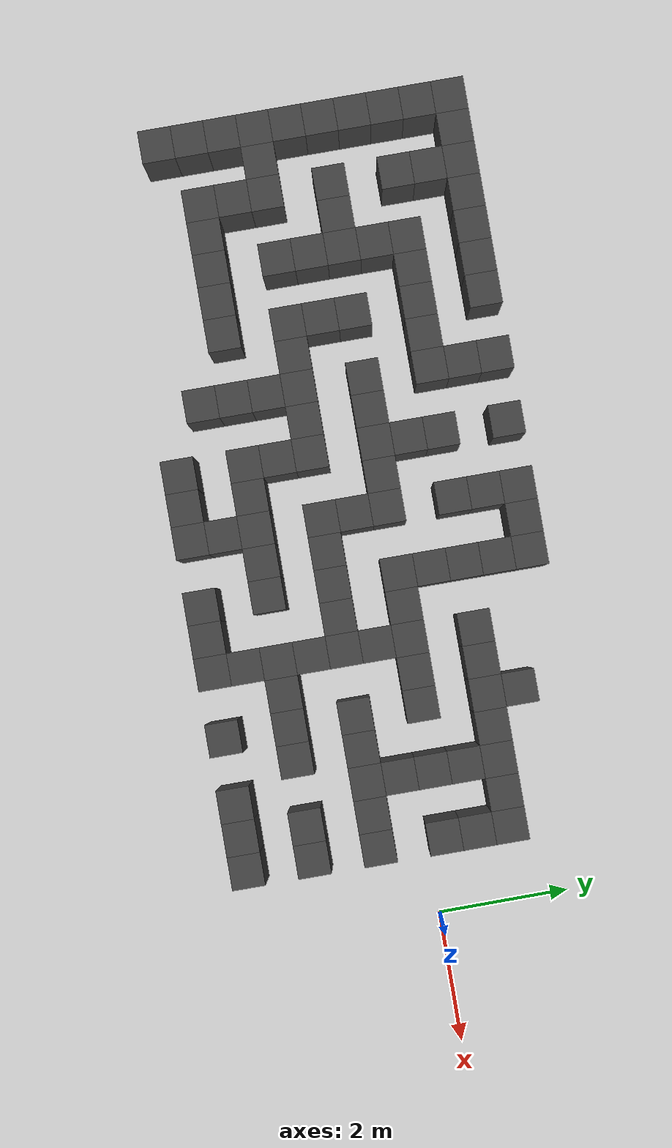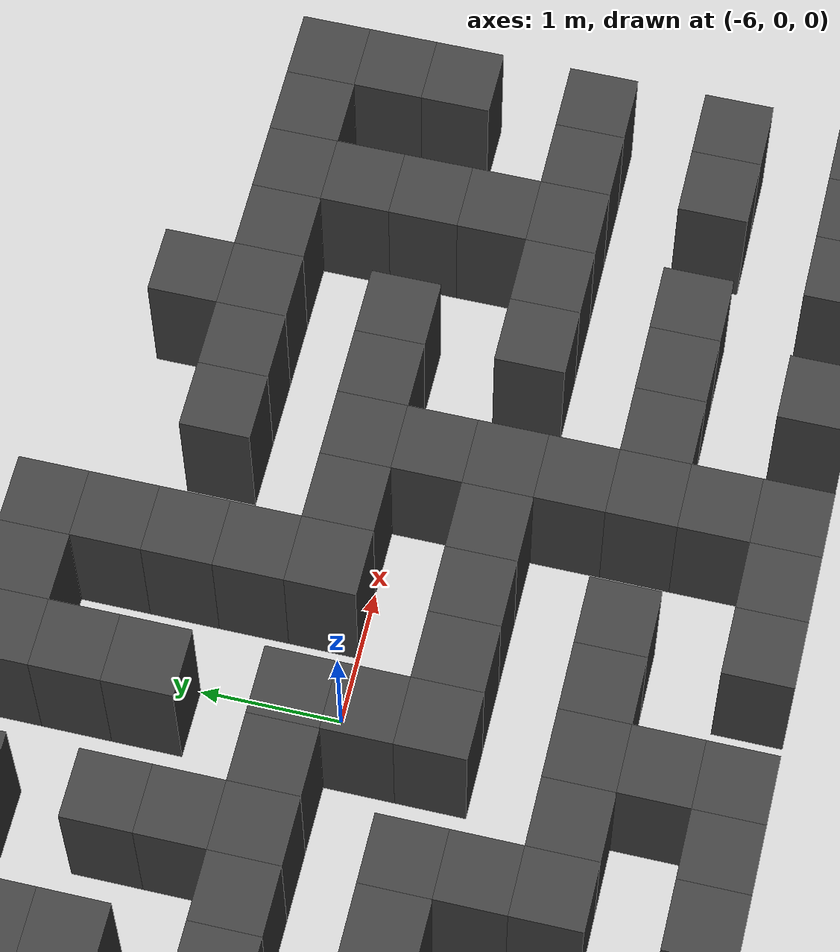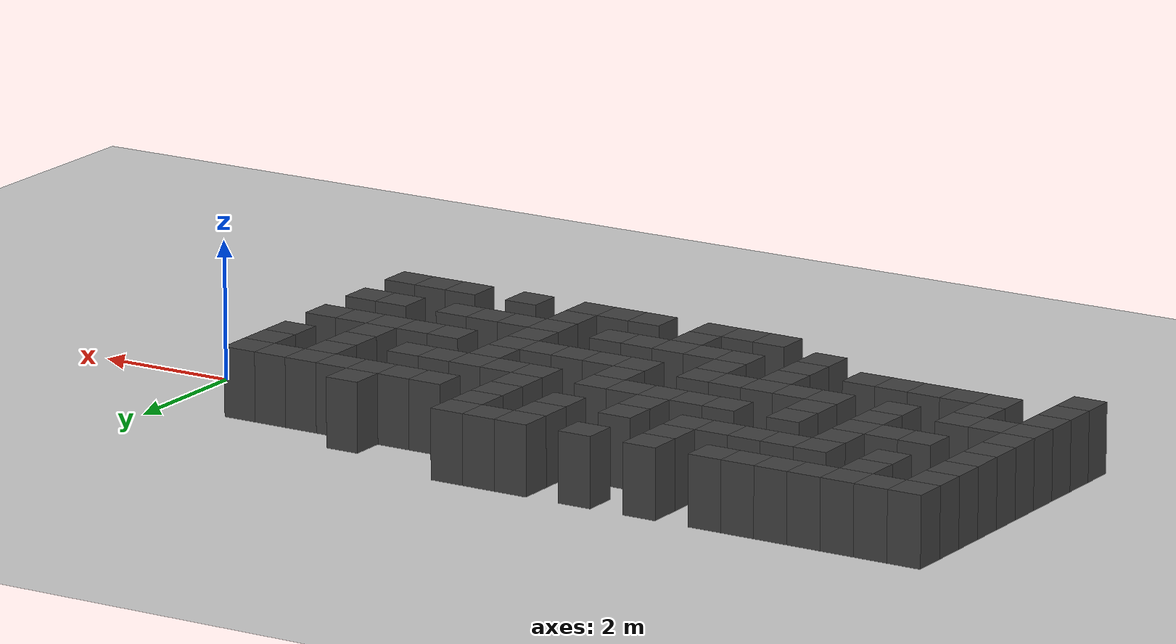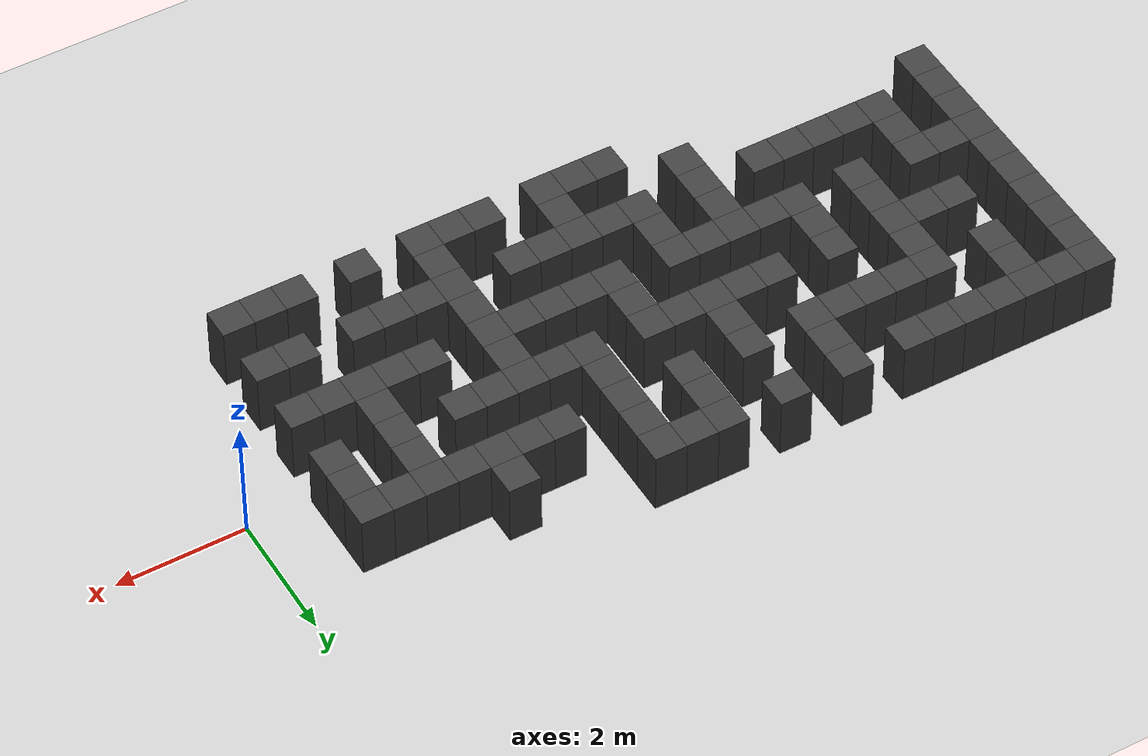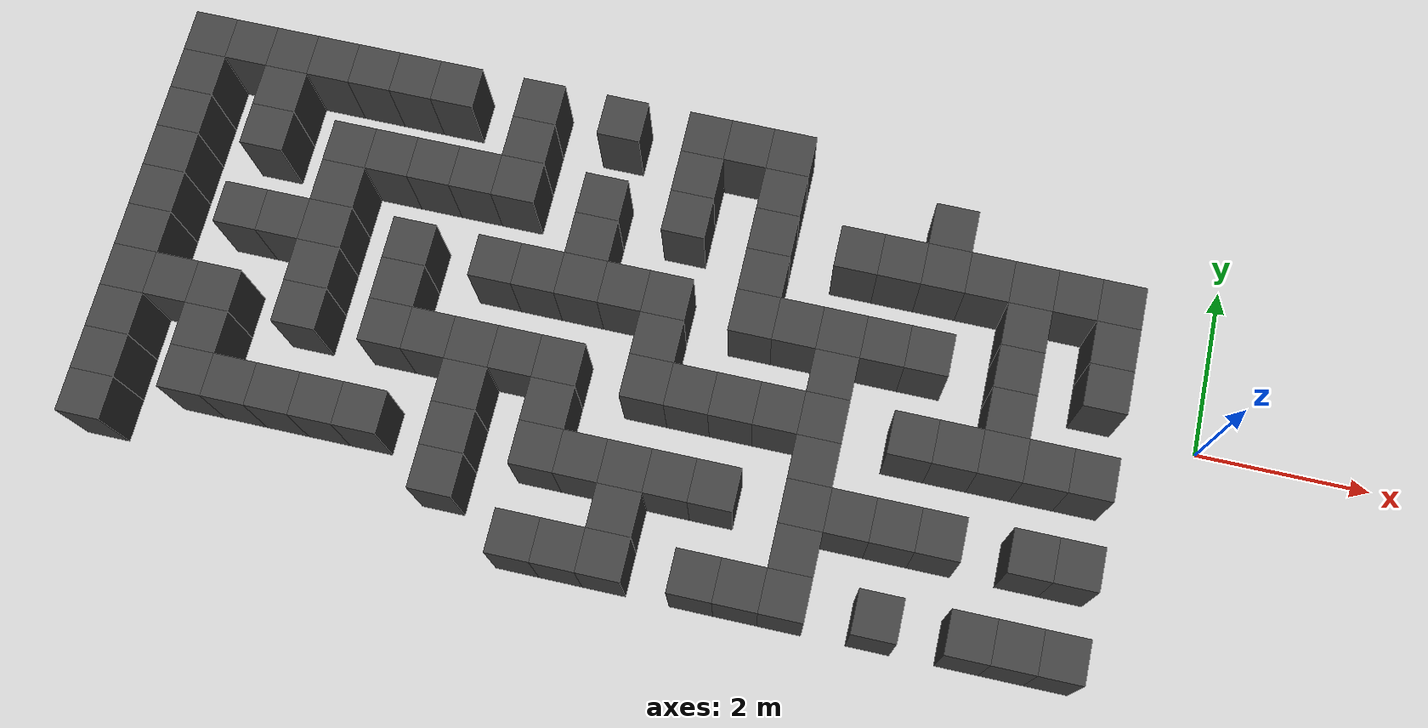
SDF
<sdf version="1.7">
 <world name="map_19217">
  <model name="ground_plane">
   <static>true</static>
   <link name="link">
    <collision name="collision">
     <geometry><plane><normal>0 0 1</normal><size>200 200</size></plane></geometry>
    </collision>
    <visual name="visual">
     <geometry><plane><normal>0 0 1</normal><size>200 200</size></plane></geometry>
     <material><ambient>0.8 0.8 0.8 1</ambient><diffuse>0.8 0.8 0.8 1</diffuse></material>
    </visual>
   </link>
  </model>
  <model name="maze_environment">
   <static>true</static>
   <link name="wall_513">
    <pose>-12.250 2.250 0.500 0 0 0</pose>
    <collision name="col"><geometry><box><size>0.5 0.5 1.0</size></box></geometry></collision>
    <visual name="vis">
     <geometry><box><size>0.5 0.5 1.0</size></box></geometry>
     <material><ambient>0.15 0.15 0.15 1</ambient><diffuse>0.25 0.25 0.25 1</diffuse></material>
    </visual>
   </link>
   <link name="wall_514">
    <pose>-11.750 2.250 0.500 0 0 0</pose>
    <collision name="col"><geometry><box><size>0.5 0.5 1.0</size></box></geometry></collision>
    <visual name="vis">
     <geometry><box><size>0.5 0.5 1.0</size></box></geometry>
     <material><ambient>0.15 0.15 0.15 1</ambient><diffuse>0.25 0.25 0.25 1</diffuse></material>
    </visual>
   </link>
   <link name="wall_515">
    <pose>-11.250 2.250 0.500 0 0 0</pose>
    <collision name="col"><geometry><box><size>0.5 0.5 1.0</size></box></geometry></collision>
    <visual name="vis">
     <geometry><box><size>0.5 0.5 1.0</size></box></geometry>
     <material><ambient>0.15 0.15 0.15 1</ambient><diffuse>0.25 0.25 0.25 1</diffuse></material>
    </visual>
   </link>
   <link name="wall_516">
    <pose>-10.750 2.250 0.500 0 0 0</pose>
    <collision name="col"><geometry><box><size>0.5 0.5 1.0</size></box></geometry></collision>
    <visual name="vis">
     <geometry><box><size>0.5 0.5 1.0</size></box></geometry>
     <material><ambient>0.15 0.15 0.15 1</ambient><diffuse>0.25 0.25 0.25 1</diffuse></material>
    </visual>
   </link>
   <link name="wall_517">
    <pose>-10.250 2.250 0.500 0 0 0</pose>
    <collision name="col"><geometry><box><size>0.5 0.5 1.0</size></box></geometry></collision>
    <visual name="vis">
     <geometry><box><size>0.5 0.5 1.0</size></box></geometry>
     <material><ambient>0.15 0.15 0.15 1</ambient><diffuse>0.25 0.25 0.25 1</diffuse></material>
    </visual>
   </link>
   <link name="wall_518">
    <pose>-9.750 2.250 0.500 0 0 0</pose>
    <collision name="col"><geometry><box><size>0.5 0.5 1.0</size></box></geometry></collision>
    <visual name="vis">
     <geometry><box><size>0.5 0.5 1.0</size></box></geometry>
     <material><ambient>0.15 0.15 0.15 1</ambient><diffuse>0.25 0.25 0.25 1</diffuse></material>
    </visual>
   </link>
   <link name="wall_519">
    <pose>-9.250 2.250 0.500 0 0 0</pose>
    <collision name="col"><geometry><box><size>0.5 0.5 1.0</size></box></geometry></collision>
    <visual name="vis">
     <geometry><box><size>0.5 0.5 1.0</size></box></geometry>
     <material><ambient>0.15 0.15 0.15 1</ambient><diffuse>0.25 0.25 0.25 1</diffuse></material>
    </visual>
   </link>
   <link name="wall_520">
    <pose>-8.250 2.250 0.500 0 0 0</pose>
    <collision name="col"><geometry><box><size>0.5 0.5 1.0</size></box></geometry></collision>
    <visual name="vis">
     <geometry><box><size>0.5 0.5 1.0</size></box></geometry>
     <material><ambient>0.15 0.15 0.15 1</ambient><diffuse>0.25 0.25 0.25 1</diffuse></material>
    </visual>
   </link>
   <link name="wall_521">
    <pose>-7.250 2.250 0.500 0 0 0</pose>
    <collision name="col"><geometry><box><size>0.5 0.5 1.0</size></box></geometry></collision>
    <visual name="vis">
     <geometry><box><size>0.5 0.5 1.0</size></box></geometry>
     <material><ambient>0.15 0.15 0.15 1</ambient><diffuse>0.25 0.25 0.25 1</diffuse></material>
    </visual>
   </link>
   <link name="wall_522">
    <pose>-6.250 2.250 0.500 0 0 0</pose>
    <collision name="col"><geometry><box><size>0.5 0.5 1.0</size></box></geometry></collision>
    <visual name="vis">
     <geometry><box><size>0.5 0.5 1.0</size></box></geometry>
     <material><ambient>0.15 0.15 0.15 1</ambient><diffuse>0.25 0.25 0.25 1</diffuse></material>
    </visual>
   </link>
   <link name="wall_523">
    <pose>-5.750 2.250 0.500 0 0 0</pose>
    <collision name="col"><geometry><box><size>0.5 0.5 1.0</size></box></geometry></collision>
    <visual name="vis">
     <geometry><box><size>0.5 0.5 1.0</size></box></geometry>
     <material><ambient>0.15 0.15 0.15 1</ambient><diffuse>0.25 0.25 0.25 1</diffuse></material>
    </visual>
   </link>
   <link name="wall_524">
    <pose>-5.250 2.250 0.500 0 0 0</pose>
    <collision name="col"><geometry><box><size>0.5 0.5 1.0</size></box></geometry></collision>
    <visual name="vis">
     <geometry><box><size>0.5 0.5 1.0</size></box></geometry>
     <material><ambient>0.15 0.15 0.15 1</ambient><diffuse>0.25 0.25 0.25 1</diffuse></material>
    </visual>
   </link>
   <link name="wall_551">
    <pose>-12.250 1.750 0.500 0 0 0</pose>
    <collision name="col"><geometry><box><size>0.5 0.5 1.0</size></box></geometry></collision>
    <visual name="vis">
     <geometry><box><size>0.5 0.5 1.0</size></box></geometry>
     <material><ambient>0.15 0.15 0.15 1</ambient><diffuse>0.25 0.25 0.25 1</diffuse></material>
    </visual>
   </link>
   <link name="wall_552">
    <pose>-11.250 1.750 0.500 0 0 0</pose>
    <collision name="col"><geometry><box><size>0.5 0.5 1.0</size></box></geometry></collision>
    <visual name="vis">
     <geometry><box><size>0.5 0.5 1.0</size></box></geometry>
     <material><ambient>0.15 0.15 0.15 1</ambient><diffuse>0.25 0.25 0.25 1</diffuse></material>
    </visual>
   </link>
   <link name="wall_553">
    <pose>-8.250 1.750 0.500 0 0 0</pose>
    <collision name="col"><geometry><box><size>0.5 0.5 1.0</size></box></geometry></collision>
    <visual name="vis">
     <geometry><box><size>0.5 0.5 1.0</size></box></geometry>
     <material><ambient>0.15 0.15 0.15 1</ambient><diffuse>0.25 0.25 0.25 1</diffuse></material>
    </visual>
   </link>
   <link name="wall_554">
    <pose>-6.250 1.750 0.500 0 0 0</pose>
    <collision name="col"><geometry><box><size>0.5 0.5 1.0</size></box></geometry></collision>
    <visual name="vis">
     <geometry><box><size>0.5 0.5 1.0</size></box></geometry>
     <material><ambient>0.15 0.15 0.15 1</ambient><diffuse>0.25 0.25 0.25 1</diffuse></material>
    </visual>
   </link>
   <link name="wall_555">
    <pose>-5.250 1.750 0.500 0 0 0</pose>
    <collision name="col"><geometry><box><size>0.5 0.5 1.0</size></box></geometry></collision>
    <visual name="vis">
     <geometry><box><size>0.5 0.5 1.0</size></box></geometry>
     <material><ambient>0.15 0.15 0.15 1</ambient><diffuse>0.25 0.25 0.25 1</diffuse></material>
    </visual>
   </link>
   <link name="wall_556">
    <pose>-3.250 1.750 0.500 0 0 0</pose>
    <collision name="col"><geometry><box><size>0.5 0.5 1.0</size></box></geometry></collision>
    <visual name="vis">
     <geometry><box><size>0.5 0.5 1.0</size></box></geometry>
     <material><ambient>0.15 0.15 0.15 1</ambient><diffuse>0.25 0.25 0.25 1</diffuse></material>
    </visual>
   </link>
   <link name="wall_566">
    <pose>-12.250 1.250 0.500 0 0 0</pose>
    <collision name="col"><geometry><box><size>0.5 0.5 1.0</size></box></geometry></collision>
    <visual name="vis">
     <geometry><box><size>0.5 0.5 1.0</size></box></geometry>
     <material><ambient>0.15 0.15 0.15 1</ambient><diffuse>0.25 0.25 0.25 1</diffuse></material>
    </visual>
   </link>
   <link name="wall_567">
    <pose>-11.250 1.250 0.500 0 0 0</pose>
    <collision name="col"><geometry><box><size>0.5 0.5 1.0</size></box></geometry></collision>
    <visual name="vis">
     <geometry><box><size>0.5 0.5 1.0</size></box></geometry>
     <material><ambient>0.15 0.15 0.15 1</ambient><diffuse>0.25 0.25 0.25 1</diffuse></material>
    </visual>
   </link>
   <link name="wall_568">
    <pose>-10.250 1.250 0.500 0 0 0</pose>
    <collision name="col"><geometry><box><size>0.5 0.5 1.0</size></box></geometry></collision>
    <visual name="vis">
     <geometry><box><size>0.5 0.5 1.0</size></box></geometry>
     <material><ambient>0.15 0.15 0.15 1</ambient><diffuse>0.25 0.25 0.25 1</diffuse></material>
    </visual>
   </link>
   <link name="wall_569">
    <pose>-9.750 1.250 0.500 0 0 0</pose>
    <collision name="col"><geometry><box><size>0.5 0.5 1.0</size></box></geometry></collision>
    <visual name="vis">
     <geometry><box><size>0.5 0.5 1.0</size></box></geometry>
     <material><ambient>0.15 0.15 0.15 1</ambient><diffuse>0.25 0.25 0.25 1</diffuse></material>
    </visual>
   </link>
   <link name="wall_570">
    <pose>-9.250 1.250 0.500 0 0 0</pose>
    <collision name="col"><geometry><box><size>0.5 0.5 1.0</size></box></geometry></collision>
    <visual name="vis">
     <geometry><box><size>0.5 0.5 1.0</size></box></geometry>
     <material><ambient>0.15 0.15 0.15 1</ambient><diffuse>0.25 0.25 0.25 1</diffuse></material>
    </visual>
   </link>
   <link name="wall_571">
    <pose>-8.750 1.250 0.500 0 0 0</pose>
    <collision name="col"><geometry><box><size>0.5 0.5 1.0</size></box></geometry></collision>
    <visual name="vis">
     <geometry><box><size>0.5 0.5 1.0</size></box></geometry>
     <material><ambient>0.15 0.15 0.15 1</ambient><diffuse>0.25 0.25 0.25 1</diffuse></material>
    </visual>
   </link>
   <link name="wall_572">
    <pose>-8.250 1.250 0.500 0 0 0</pose>
    <collision name="col"><geometry><box><size>0.5 0.5 1.0</size></box></geometry></collision>
    <visual name="vis">
     <geometry><box><size>0.5 0.5 1.0</size></box></geometry>
     <material><ambient>0.15 0.15 0.15 1</ambient><diffuse>0.25 0.25 0.25 1</diffuse></material>
    </visual>
   </link>
   <link name="wall_573">
    <pose>-7.250 1.250 0.500 0 0 0</pose>
    <collision name="col"><geometry><box><size>0.5 0.5 1.0</size></box></geometry></collision>
    <visual name="vis">
     <geometry><box><size>0.5 0.5 1.0</size></box></geometry>
     <material><ambient>0.15 0.15 0.15 1</ambient><diffuse>0.25 0.25 0.25 1</diffuse></material>
    </visual>
   </link>
   <link name="wall_574">
    <pose>-6.250 1.250 0.500 0 0 0</pose>
    <collision name="col"><geometry><box><size>0.5 0.5 1.0</size></box></geometry></collision>
    <visual name="vis">
     <geometry><box><size>0.5 0.5 1.0</size></box></geometry>
     <material><ambient>0.15 0.15 0.15 1</ambient><diffuse>0.25 0.25 0.25 1</diffuse></material>
    </visual>
   </link>
   <link name="wall_575">
    <pose>-5.250 1.250 0.500 0 0 0</pose>
    <collision name="col"><geometry><box><size>0.5 0.5 1.0</size></box></geometry></collision>
    <visual name="vis">
     <geometry><box><size>0.5 0.5 1.0</size></box></geometry>
     <material><ambient>0.15 0.15 0.15 1</ambient><diffuse>0.25 0.25 0.25 1</diffuse></material>
    </visual>
   </link>
   <link name="wall_576">
    <pose>-4.250 1.250 0.500 0 0 0</pose>
    <collision name="col"><geometry><box><size>0.5 0.5 1.0</size></box></geometry></collision>
    <visual name="vis">
     <geometry><box><size>0.5 0.5 1.0</size></box></geometry>
     <material><ambient>0.15 0.15 0.15 1</ambient><diffuse>0.25 0.25 0.25 1</diffuse></material>
    </visual>
   </link>
   <link name="wall_577">
    <pose>-3.750 1.250 0.500 0 0 0</pose>
    <collision name="col"><geometry><box><size>0.5 0.5 1.0</size></box></geometry></collision>
    <visual name="vis">
     <geometry><box><size>0.5 0.5 1.0</size></box></geometry>
     <material><ambient>0.15 0.15 0.15 1</ambient><diffuse>0.25 0.25 0.25 1</diffuse></material>
    </visual>
   </link>
   <link name="wall_578">
    <pose>-3.250 1.250 0.500 0 0 0</pose>
    <collision name="col"><geometry><box><size>0.5 0.5 1.0</size></box></geometry></collision>
    <visual name="vis">
     <geometry><box><size>0.5 0.5 1.0</size></box></geometry>
     <material><ambient>0.15 0.15 0.15 1</ambient><diffuse>0.25 0.25 0.25 1</diffuse></material>
    </visual>
   </link>
   <link name="wall_579">
    <pose>-2.750 1.250 0.500 0 0 0</pose>
    <collision name="col"><geometry><box><size>0.5 0.5 1.0</size></box></geometry></collision>
    <visual name="vis">
     <geometry><box><size>0.5 0.5 1.0</size></box></geometry>
     <material><ambient>0.15 0.15 0.15 1</ambient><diffuse>0.25 0.25 0.25 1</diffuse></material>
    </visual>
   </link>
   <link name="wall_580">
    <pose>-2.250 1.250 0.500 0 0 0</pose>
    <collision name="col"><geometry><box><size>0.5 0.5 1.0</size></box></geometry></collision>
    <visual name="vis">
     <geometry><box><size>0.5 0.5 1.0</size></box></geometry>
     <material><ambient>0.15 0.15 0.15 1</ambient><diffuse>0.25 0.25 0.25 1</diffuse></material>
    </visual>
   </link>
   <link name="wall_581">
    <pose>-1.750 1.250 0.500 0 0 0</pose>
    <collision name="col"><geometry><box><size>0.5 0.5 1.0</size></box></geometry></collision>
    <visual name="vis">
     <geometry><box><size>0.5 0.5 1.0</size></box></geometry>
     <material><ambient>0.15 0.15 0.15 1</ambient><diffuse>0.25 0.25 0.25 1</diffuse></material>
    </visual>
   </link>
   <link name="wall_582">
    <pose>-1.250 1.250 0.500 0 0 0</pose>
    <collision name="col"><geometry><box><size>0.5 0.5 1.0</size></box></geometry></collision>
    <visual name="vis">
     <geometry><box><size>0.5 0.5 1.0</size></box></geometry>
     <material><ambient>0.15 0.15 0.15 1</ambient><diffuse>0.25 0.25 0.25 1</diffuse></material>
    </visual>
   </link>
   <link name="wall_602">
    <pose>-12.250 0.750 0.500 0 0 0</pose>
    <collision name="col"><geometry><box><size>0.5 0.5 1.0</size></box></geometry></collision>
    <visual name="vis">
     <geometry><box><size>0.5 0.5 1.0</size></box></geometry>
     <material><ambient>0.15 0.15 0.15 1</ambient><diffuse>0.25 0.25 0.25 1</diffuse></material>
    </visual>
   </link>
   <link name="wall_603">
    <pose>-10.250 0.750 0.500 0 0 0</pose>
    <collision name="col"><geometry><box><size>0.5 0.5 1.0</size></box></geometry></collision>
    <visual name="vis">
     <geometry><box><size>0.5 0.5 1.0</size></box></geometry>
     <material><ambient>0.15 0.15 0.15 1</ambient><diffuse>0.25 0.25 0.25 1</diffuse></material>
    </visual>
   </link>
   <link name="wall_604">
    <pose>-7.250 0.750 0.500 0 0 0</pose>
    <collision name="col"><geometry><box><size>0.5 0.5 1.0</size></box></geometry></collision>
    <visual name="vis">
     <geometry><box><size>0.5 0.5 1.0</size></box></geometry>
     <material><ambient>0.15 0.15 0.15 1</ambient><diffuse>0.25 0.25 0.25 1</diffuse></material>
    </visual>
   </link>
   <link name="wall_605">
    <pose>-5.250 0.750 0.500 0 0 0</pose>
    <collision name="col"><geometry><box><size>0.5 0.5 1.0</size></box></geometry></collision>
    <visual name="vis">
     <geometry><box><size>0.5 0.5 1.0</size></box></geometry>
     <material><ambient>0.15 0.15 0.15 1</ambient><diffuse>0.25 0.25 0.25 1</diffuse></material>
    </visual>
   </link>
   <link name="wall_606">
    <pose>-2.250 0.750 0.500 0 0 0</pose>
    <collision name="col"><geometry><box><size>0.5 0.5 1.0</size></box></geometry></collision>
    <visual name="vis">
     <geometry><box><size>0.5 0.5 1.0</size></box></geometry>
     <material><ambient>0.15 0.15 0.15 1</ambient><diffuse>0.25 0.25 0.25 1</diffuse></material>
    </visual>
   </link>
   <link name="wall_607">
    <pose>-1.250 0.750 0.500 0 0 0</pose>
    <collision name="col"><geometry><box><size>0.5 0.5 1.0</size></box></geometry></collision>
    <visual name="vis">
     <geometry><box><size>0.5 0.5 1.0</size></box></geometry>
     <material><ambient>0.15 0.15 0.15 1</ambient><diffuse>0.25 0.25 0.25 1</diffuse></material>
    </visual>
   </link>
   <link name="wall_615">
    <pose>-12.250 0.250 0.500 0 0 0</pose>
    <collision name="col"><geometry><box><size>0.5 0.5 1.0</size></box></geometry></collision>
    <visual name="vis">
     <geometry><box><size>0.5 0.5 1.0</size></box></geometry>
     <material><ambient>0.15 0.15 0.15 1</ambient><diffuse>0.25 0.25 0.25 1</diffuse></material>
    </visual>
   </link>
   <link name="wall_616">
    <pose>-11.250 0.250 0.500 0 0 0</pose>
    <collision name="col"><geometry><box><size>0.5 0.5 1.0</size></box></geometry></collision>
    <visual name="vis">
     <geometry><box><size>0.5 0.5 1.0</size></box></geometry>
     <material><ambient>0.15 0.15 0.15 1</ambient><diffuse>0.25 0.25 0.25 1</diffuse></material>
    </visual>
   </link>
   <link name="wall_617">
    <pose>-10.750 0.250 0.500 0 0 0</pose>
    <collision name="col"><geometry><box><size>0.5 0.5 1.0</size></box></geometry></collision>
    <visual name="vis">
     <geometry><box><size>0.5 0.5 1.0</size></box></geometry>
     <material><ambient>0.15 0.15 0.15 1</ambient><diffuse>0.25 0.25 0.25 1</diffuse></material>
    </visual>
   </link>
   <link name="wall_618">
    <pose>-10.250 0.250 0.500 0 0 0</pose>
    <collision name="col"><geometry><box><size>0.5 0.5 1.0</size></box></geometry></collision>
    <visual name="vis">
     <geometry><box><size>0.5 0.5 1.0</size></box></geometry>
     <material><ambient>0.15 0.15 0.15 1</ambient><diffuse>0.25 0.25 0.25 1</diffuse></material>
    </visual>
   </link>
   <link name="wall_619">
    <pose>-9.250 0.250 0.500 0 0 0</pose>
    <collision name="col"><geometry><box><size>0.5 0.5 1.0</size></box></geometry></collision>
    <visual name="vis">
     <geometry><box><size>0.5 0.5 1.0</size></box></geometry>
     <material><ambient>0.15 0.15 0.15 1</ambient><diffuse>0.25 0.25 0.25 1</diffuse></material>
    </visual>
   </link>
   <link name="wall_620">
    <pose>-8.250 0.250 0.500 0 0 0</pose>
    <collision name="col"><geometry><box><size>0.5 0.5 1.0</size></box></geometry></collision>
    <visual name="vis">
     <geometry><box><size>0.5 0.5 1.0</size></box></geometry>
     <material><ambient>0.15 0.15 0.15 1</ambient><diffuse>0.25 0.25 0.25 1</diffuse></material>
    </visual>
   </link>
   <link name="wall_621">
    <pose>-7.750 0.250 0.500 0 0 0</pose>
    <collision name="col"><geometry><box><size>0.5 0.5 1.0</size></box></geometry></collision>
    <visual name="vis">
     <geometry><box><size>0.5 0.5 1.0</size></box></geometry>
     <material><ambient>0.15 0.15 0.15 1</ambient><diffuse>0.25 0.25 0.25 1</diffuse></material>
    </visual>
   </link>
   <link name="wall_622">
    <pose>-7.250 0.250 0.500 0 0 0</pose>
    <collision name="col"><geometry><box><size>0.5 0.5 1.0</size></box></geometry></collision>
    <visual name="vis">
     <geometry><box><size>0.5 0.5 1.0</size></box></geometry>
     <material><ambient>0.15 0.15 0.15 1</ambient><diffuse>0.25 0.25 0.25 1</diffuse></material>
    </visual>
   </link>
   <link name="wall_623">
    <pose>-6.750 0.250 0.500 0 0 0</pose>
    <collision name="col"><geometry><box><size>0.5 0.5 1.0</size></box></geometry></collision>
    <visual name="vis">
     <geometry><box><size>0.5 0.5 1.0</size></box></geometry>
     <material><ambient>0.15 0.15 0.15 1</ambient><diffuse>0.25 0.25 0.25 1</diffuse></material>
    </visual>
   </link>
   <link name="wall_624">
    <pose>-6.250 0.250 0.500 0 0 0</pose>
    <collision name="col"><geometry><box><size>0.5 0.5 1.0</size></box></geometry></collision>
    <visual name="vis">
     <geometry><box><size>0.5 0.5 1.0</size></box></geometry>
     <material><ambient>0.15 0.15 0.15 1</ambient><diffuse>0.25 0.25 0.25 1</diffuse></material>
    </visual>
   </link>
   <link name="wall_625">
    <pose>-5.250 0.250 0.500 0 0 0</pose>
    <collision name="col"><geometry><box><size>0.5 0.5 1.0</size></box></geometry></collision>
    <visual name="vis">
     <geometry><box><size>0.5 0.5 1.0</size></box></geometry>
     <material><ambient>0.15 0.15 0.15 1</ambient><diffuse>0.25 0.25 0.25 1</diffuse></material>
    </visual>
   </link>
   <link name="wall_626">
    <pose>-4.750 0.250 0.500 0 0 0</pose>
    <collision name="col"><geometry><box><size>0.5 0.5 1.0</size></box></geometry></collision>
    <visual name="vis">
     <geometry><box><size>0.5 0.5 1.0</size></box></geometry>
     <material><ambient>0.15 0.15 0.15 1</ambient><diffuse>0.25 0.25 0.25 1</diffuse></material>
    </visual>
   </link>
   <link name="wall_627">
    <pose>-4.250 0.250 0.500 0 0 0</pose>
    <collision name="col"><geometry><box><size>0.5 0.5 1.0</size></box></geometry></collision>
    <visual name="vis">
     <geometry><box><size>0.5 0.5 1.0</size></box></geometry>
     <material><ambient>0.15 0.15 0.15 1</ambient><diffuse>0.25 0.25 0.25 1</diffuse></material>
    </visual>
   </link>
   <link name="wall_628">
    <pose>-3.750 0.250 0.500 0 0 0</pose>
    <collision name="col"><geometry><box><size>0.5 0.5 1.0</size></box></geometry></collision>
    <visual name="vis">
     <geometry><box><size>0.5 0.5 1.0</size></box></geometry>
     <material><ambient>0.15 0.15 0.15 1</ambient><diffuse>0.25 0.25 0.25 1</diffuse></material>
    </visual>
   </link>
   <link name="wall_629">
    <pose>-3.250 0.250 0.500 0 0 0</pose>
    <collision name="col"><geometry><box><size>0.5 0.5 1.0</size></box></geometry></collision>
    <visual name="vis">
     <geometry><box><size>0.5 0.5 1.0</size></box></geometry>
     <material><ambient>0.15 0.15 0.15 1</ambient><diffuse>0.25 0.25 0.25 1</diffuse></material>
    </visual>
   </link>
   <link name="wall_630">
    <pose>-2.250 0.250 0.500 0 0 0</pose>
    <collision name="col"><geometry><box><size>0.5 0.5 1.0</size></box></geometry></collision>
    <visual name="vis">
     <geometry><box><size>0.5 0.5 1.0</size></box></geometry>
     <material><ambient>0.15 0.15 0.15 1</ambient><diffuse>0.25 0.25 0.25 1</diffuse></material>
    </visual>
   </link>
   <link name="wall_631">
    <pose>-1.250 0.250 0.500 0 0 0</pose>
    <collision name="col"><geometry><box><size>0.5 0.5 1.0</size></box></geometry></collision>
    <visual name="vis">
     <geometry><box><size>0.5 0.5 1.0</size></box></geometry>
     <material><ambient>0.15 0.15 0.15 1</ambient><diffuse>0.25 0.25 0.25 1</diffuse></material>
    </visual>
   </link>
   <link name="wall_654">
    <pose>-12.250 -0.250 0.500 0 0 0</pose>
    <collision name="col"><geometry><box><size>0.5 0.5 1.0</size></box></geometry></collision>
    <visual name="vis">
     <geometry><box><size>0.5 0.5 1.0</size></box></geometry>
     <material><ambient>0.15 0.15 0.15 1</ambient><diffuse>0.25 0.25 0.25 1</diffuse></material>
    </visual>
   </link>
   <link name="wall_655">
    <pose>-10.250 -0.250 0.500 0 0 0</pose>
    <collision name="col"><geometry><box><size>0.5 0.5 1.0</size></box></geometry></collision>
    <visual name="vis">
     <geometry><box><size>0.5 0.5 1.0</size></box></geometry>
     <material><ambient>0.15 0.15 0.15 1</ambient><diffuse>0.25 0.25 0.25 1</diffuse></material>
    </visual>
   </link>
   <link name="wall_656">
    <pose>-9.250 -0.250 0.500 0 0 0</pose>
    <collision name="col"><geometry><box><size>0.5 0.5 1.0</size></box></geometry></collision>
    <visual name="vis">
     <geometry><box><size>0.5 0.5 1.0</size></box></geometry>
     <material><ambient>0.15 0.15 0.15 1</ambient><diffuse>0.25 0.25 0.25 1</diffuse></material>
    </visual>
   </link>
   <link name="wall_657">
    <pose>-6.250 -0.250 0.500 0 0 0</pose>
    <collision name="col"><geometry><box><size>0.5 0.5 1.0</size></box></geometry></collision>
    <visual name="vis">
     <geometry><box><size>0.5 0.5 1.0</size></box></geometry>
     <material><ambient>0.15 0.15 0.15 1</ambient><diffuse>0.25 0.25 0.25 1</diffuse></material>
    </visual>
   </link>
   <link name="wall_658">
    <pose>-4.250 -0.250 0.500 0 0 0</pose>
    <collision name="col"><geometry><box><size>0.5 0.5 1.0</size></box></geometry></collision>
    <visual name="vis">
     <geometry><box><size>0.5 0.5 1.0</size></box></geometry>
     <material><ambient>0.15 0.15 0.15 1</ambient><diffuse>0.25 0.25 0.25 1</diffuse></material>
    </visual>
   </link>
   <link name="wall_659">
    <pose>-2.250 -0.250 0.500 0 0 0</pose>
    <collision name="col"><geometry><box><size>0.5 0.5 1.0</size></box></geometry></collision>
    <visual name="vis">
     <geometry><box><size>0.5 0.5 1.0</size></box></geometry>
     <material><ambient>0.15 0.15 0.15 1</ambient><diffuse>0.25 0.25 0.25 1</diffuse></material>
    </visual>
   </link>
   <link name="wall_664">
    <pose>-12.250 -0.750 0.500 0 0 0</pose>
    <collision name="col"><geometry><box><size>0.5 0.5 1.0</size></box></geometry></collision>
    <visual name="vis">
     <geometry><box><size>0.5 0.5 1.0</size></box></geometry>
     <material><ambient>0.15 0.15 0.15 1</ambient><diffuse>0.25 0.25 0.25 1</diffuse></material>
    </visual>
   </link>
   <link name="wall_665">
    <pose>-11.750 -0.750 0.500 0 0 0</pose>
    <collision name="col"><geometry><box><size>0.5 0.5 1.0</size></box></geometry></collision>
    <visual name="vis">
     <geometry><box><size>0.5 0.5 1.0</size></box></geometry>
     <material><ambient>0.15 0.15 0.15 1</ambient><diffuse>0.25 0.25 0.25 1</diffuse></material>
    </visual>
   </link>
   <link name="wall_666">
    <pose>-11.250 -0.750 0.500 0 0 0</pose>
    <collision name="col"><geometry><box><size>0.5 0.5 1.0</size></box></geometry></collision>
    <visual name="vis">
     <geometry><box><size>0.5 0.5 1.0</size></box></geometry>
     <material><ambient>0.15 0.15 0.15 1</ambient><diffuse>0.25 0.25 0.25 1</diffuse></material>
    </visual>
   </link>
   <link name="wall_667">
    <pose>-10.250 -0.750 0.500 0 0 0</pose>
    <collision name="col"><geometry><box><size>0.5 0.5 1.0</size></box></geometry></collision>
    <visual name="vis">
     <geometry><box><size>0.5 0.5 1.0</size></box></geometry>
     <material><ambient>0.15 0.15 0.15 1</ambient><diffuse>0.25 0.25 0.25 1</diffuse></material>
    </visual>
   </link>
   <link name="wall_668">
    <pose>-9.250 -0.750 0.500 0 0 0</pose>
    <collision name="col"><geometry><box><size>0.5 0.5 1.0</size></box></geometry></collision>
    <visual name="vis">
     <geometry><box><size>0.5 0.5 1.0</size></box></geometry>
     <material><ambient>0.15 0.15 0.15 1</ambient><diffuse>0.25 0.25 0.25 1</diffuse></material>
    </visual>
   </link>
   <link name="wall_669">
    <pose>-8.750 -0.750 0.500 0 0 0</pose>
    <collision name="col"><geometry><box><size>0.5 0.5 1.0</size></box></geometry></collision>
    <visual name="vis">
     <geometry><box><size>0.5 0.5 1.0</size></box></geometry>
     <material><ambient>0.15 0.15 0.15 1</ambient><diffuse>0.25 0.25 0.25 1</diffuse></material>
    </visual>
   </link>
   <link name="wall_670">
    <pose>-8.250 -0.750 0.500 0 0 0</pose>
    <collision name="col"><geometry><box><size>0.5 0.5 1.0</size></box></geometry></collision>
    <visual name="vis">
     <geometry><box><size>0.5 0.5 1.0</size></box></geometry>
     <material><ambient>0.15 0.15 0.15 1</ambient><diffuse>0.25 0.25 0.25 1</diffuse></material>
    </visual>
   </link>
   <link name="wall_671">
    <pose>-7.750 -0.750 0.500 0 0 0</pose>
    <collision name="col"><geometry><box><size>0.5 0.5 1.0</size></box></geometry></collision>
    <visual name="vis">
     <geometry><box><size>0.5 0.5 1.0</size></box></geometry>
     <material><ambient>0.15 0.15 0.15 1</ambient><diffuse>0.25 0.25 0.25 1</diffuse></material>
    </visual>
   </link>
   <link name="wall_672">
    <pose>-7.250 -0.750 0.500 0 0 0</pose>
    <collision name="col"><geometry><box><size>0.5 0.5 1.0</size></box></geometry></collision>
    <visual name="vis">
     <geometry><box><size>0.5 0.5 1.0</size></box></geometry>
     <material><ambient>0.15 0.15 0.15 1</ambient><diffuse>0.25 0.25 0.25 1</diffuse></material>
    </visual>
   </link>
   <link name="wall_673">
    <pose>-6.250 -0.750 0.500 0 0 0</pose>
    <collision name="col"><geometry><box><size>0.5 0.5 1.0</size></box></geometry></collision>
    <visual name="vis">
     <geometry><box><size>0.5 0.5 1.0</size></box></geometry>
     <material><ambient>0.15 0.15 0.15 1</ambient><diffuse>0.25 0.25 0.25 1</diffuse></material>
    </visual>
   </link>
   <link name="wall_674">
    <pose>-5.750 -0.750 0.500 0 0 0</pose>
    <collision name="col"><geometry><box><size>0.5 0.5 1.0</size></box></geometry></collision>
    <visual name="vis">
     <geometry><box><size>0.5 0.5 1.0</size></box></geometry>
     <material><ambient>0.15 0.15 0.15 1</ambient><diffuse>0.25 0.25 0.25 1</diffuse></material>
    </visual>
   </link>
   <link name="wall_675">
    <pose>-5.250 -0.750 0.500 0 0 0</pose>
    <collision name="col"><geometry><box><size>0.5 0.5 1.0</size></box></geometry></collision>
    <visual name="vis">
     <geometry><box><size>0.5 0.5 1.0</size></box></geometry>
     <material><ambient>0.15 0.15 0.15 1</ambient><diffuse>0.25 0.25 0.25 1</diffuse></material>
    </visual>
   </link>
   <link name="wall_676">
    <pose>-4.750 -0.750 0.500 0 0 0</pose>
    <collision name="col"><geometry><box><size>0.5 0.5 1.0</size></box></geometry></collision>
    <visual name="vis">
     <geometry><box><size>0.5 0.5 1.0</size></box></geometry>
     <material><ambient>0.15 0.15 0.15 1</ambient><diffuse>0.25 0.25 0.25 1</diffuse></material>
    </visual>
   </link>
   <link name="wall_677">
    <pose>-4.250 -0.750 0.500 0 0 0</pose>
    <collision name="col"><geometry><box><size>0.5 0.5 1.0</size></box></geometry></collision>
    <visual name="vis">
     <geometry><box><size>0.5 0.5 1.0</size></box></geometry>
     <material><ambient>0.15 0.15 0.15 1</ambient><diffuse>0.25 0.25 0.25 1</diffuse></material>
    </visual>
   </link>
   <link name="wall_678">
    <pose>-3.250 -0.750 0.500 0 0 0</pose>
    <collision name="col"><geometry><box><size>0.5 0.5 1.0</size></box></geometry></collision>
    <visual name="vis">
     <geometry><box><size>0.5 0.5 1.0</size></box></geometry>
     <material><ambient>0.15 0.15 0.15 1</ambient><diffuse>0.25 0.25 0.25 1</diffuse></material>
    </visual>
   </link>
   <link name="wall_679">
    <pose>-2.750 -0.750 0.500 0 0 0</pose>
    <collision name="col"><geometry><box><size>0.5 0.5 1.0</size></box></geometry></collision>
    <visual name="vis">
     <geometry><box><size>0.5 0.5 1.0</size></box></geometry>
     <material><ambient>0.15 0.15 0.15 1</ambient><diffuse>0.25 0.25 0.25 1</diffuse></material>
    </visual>
   </link>
   <link name="wall_680">
    <pose>-2.250 -0.750 0.500 0 0 0</pose>
    <collision name="col"><geometry><box><size>0.5 0.5 1.0</size></box></geometry></collision>
    <visual name="vis">
     <geometry><box><size>0.5 0.5 1.0</size></box></geometry>
     <material><ambient>0.15 0.15 0.15 1</ambient><diffuse>0.25 0.25 0.25 1</diffuse></material>
    </visual>
   </link>
   <link name="wall_681">
    <pose>-1.750 -0.750 0.500 0 0 0</pose>
    <collision name="col"><geometry><box><size>0.5 0.5 1.0</size></box></geometry></collision>
    <visual name="vis">
     <geometry><box><size>0.5 0.5 1.0</size></box></geometry>
     <material><ambient>0.15 0.15 0.15 1</ambient><diffuse>0.25 0.25 0.25 1</diffuse></material>
    </visual>
   </link>
   <link name="wall_682">
    <pose>-1.250 -0.750 0.500 0 0 0</pose>
    <collision name="col"><geometry><box><size>0.5 0.5 1.0</size></box></geometry></collision>
    <visual name="vis">
     <geometry><box><size>0.5 0.5 1.0</size></box></geometry>
     <material><ambient>0.15 0.15 0.15 1</ambient><diffuse>0.25 0.25 0.25 1</diffuse></material>
    </visual>
   </link>
   <link name="wall_708">
    <pose>-12.250 -1.250 0.500 0 0 0</pose>
    <collision name="col"><geometry><box><size>0.5 0.5 1.0</size></box></geometry></collision>
    <visual name="vis">
     <geometry><box><size>0.5 0.5 1.0</size></box></geometry>
     <material><ambient>0.15 0.15 0.15 1</ambient><diffuse>0.25 0.25 0.25 1</diffuse></material>
    </visual>
   </link>
   <link name="wall_709">
    <pose>-11.250 -1.250 0.500 0 0 0</pose>
    <collision name="col"><geometry><box><size>0.5 0.5 1.0</size></box></geometry></collision>
    <visual name="vis">
     <geometry><box><size>0.5 0.5 1.0</size></box></geometry>
     <material><ambient>0.15 0.15 0.15 1</ambient><diffuse>0.25 0.25 0.25 1</diffuse></material>
    </visual>
   </link>
   <link name="wall_710">
    <pose>-8.250 -1.250 0.500 0 0 0</pose>
    <collision name="col"><geometry><box><size>0.5 0.5 1.0</size></box></geometry></collision>
    <visual name="vis">
     <geometry><box><size>0.5 0.5 1.0</size></box></geometry>
     <material><ambient>0.15 0.15 0.15 1</ambient><diffuse>0.25 0.25 0.25 1</diffuse></material>
    </visual>
   </link>
   <link name="wall_711">
    <pose>-7.250 -1.250 0.500 0 0 0</pose>
    <collision name="col"><geometry><box><size>0.5 0.5 1.0</size></box></geometry></collision>
    <visual name="vis">
     <geometry><box><size>0.5 0.5 1.0</size></box></geometry>
     <material><ambient>0.15 0.15 0.15 1</ambient><diffuse>0.25 0.25 0.25 1</diffuse></material>
    </visual>
   </link>
   <link name="wall_712">
    <pose>-4.250 -1.250 0.500 0 0 0</pose>
    <collision name="col"><geometry><box><size>0.5 0.5 1.0</size></box></geometry></collision>
    <visual name="vis">
     <geometry><box><size>0.5 0.5 1.0</size></box></geometry>
     <material><ambient>0.15 0.15 0.15 1</ambient><diffuse>0.25 0.25 0.25 1</diffuse></material>
    </visual>
   </link>
   <link name="wall_718">
    <pose>-12.250 -1.750 0.500 0 0 0</pose>
    <collision name="col"><geometry><box><size>0.5 0.5 1.0</size></box></geometry></collision>
    <visual name="vis">
     <geometry><box><size>0.5 0.5 1.0</size></box></geometry>
     <material><ambient>0.15 0.15 0.15 1</ambient><diffuse>0.25 0.25 0.25 1</diffuse></material>
    </visual>
   </link>
   <link name="wall_719">
    <pose>-11.250 -1.750 0.500 0 0 0</pose>
    <collision name="col"><geometry><box><size>0.5 0.5 1.0</size></box></geometry></collision>
    <visual name="vis">
     <geometry><box><size>0.5 0.5 1.0</size></box></geometry>
     <material><ambient>0.15 0.15 0.15 1</ambient><diffuse>0.25 0.25 0.25 1</diffuse></material>
    </visual>
   </link>
   <link name="wall_720">
    <pose>-10.750 -1.750 0.500 0 0 0</pose>
    <collision name="col"><geometry><box><size>0.5 0.5 1.0</size></box></geometry></collision>
    <visual name="vis">
     <geometry><box><size>0.5 0.5 1.0</size></box></geometry>
     <material><ambient>0.15 0.15 0.15 1</ambient><diffuse>0.25 0.25 0.25 1</diffuse></material>
    </visual>
   </link>
   <link name="wall_721">
    <pose>-10.250 -1.750 0.500 0 0 0</pose>
    <collision name="col"><geometry><box><size>0.5 0.5 1.0</size></box></geometry></collision>
    <visual name="vis">
     <geometry><box><size>0.5 0.5 1.0</size></box></geometry>
     <material><ambient>0.15 0.15 0.15 1</ambient><diffuse>0.25 0.25 0.25 1</diffuse></material>
    </visual>
   </link>
   <link name="wall_722">
    <pose>-9.750 -1.750 0.500 0 0 0</pose>
    <collision name="col"><geometry><box><size>0.5 0.5 1.0</size></box></geometry></collision>
    <visual name="vis">
     <geometry><box><size>0.5 0.5 1.0</size></box></geometry>
     <material><ambient>0.15 0.15 0.15 1</ambient><diffuse>0.25 0.25 0.25 1</diffuse></material>
    </visual>
   </link>
   <link name="wall_723">
    <pose>-9.250 -1.750 0.500 0 0 0</pose>
    <collision name="col"><geometry><box><size>0.5 0.5 1.0</size></box></geometry></collision>
    <visual name="vis">
     <geometry><box><size>0.5 0.5 1.0</size></box></geometry>
     <material><ambient>0.15 0.15 0.15 1</ambient><diffuse>0.25 0.25 0.25 1</diffuse></material>
    </visual>
   </link>
   <link name="wall_724">
    <pose>-8.250 -1.750 0.500 0 0 0</pose>
    <collision name="col"><geometry><box><size>0.5 0.5 1.0</size></box></geometry></collision>
    <visual name="vis">
     <geometry><box><size>0.5 0.5 1.0</size></box></geometry>
     <material><ambient>0.15 0.15 0.15 1</ambient><diffuse>0.25 0.25 0.25 1</diffuse></material>
    </visual>
   </link>
   <link name="wall_725">
    <pose>-7.250 -1.750 0.500 0 0 0</pose>
    <collision name="col"><geometry><box><size>0.5 0.5 1.0</size></box></geometry></collision>
    <visual name="vis">
     <geometry><box><size>0.5 0.5 1.0</size></box></geometry>
     <material><ambient>0.15 0.15 0.15 1</ambient><diffuse>0.25 0.25 0.25 1</diffuse></material>
    </visual>
   </link>
   <link name="wall_726">
    <pose>-6.750 -1.750 0.500 0 0 0</pose>
    <collision name="col"><geometry><box><size>0.5 0.5 1.0</size></box></geometry></collision>
    <visual name="vis">
     <geometry><box><size>0.5 0.5 1.0</size></box></geometry>
     <material><ambient>0.15 0.15 0.15 1</ambient><diffuse>0.25 0.25 0.25 1</diffuse></material>
    </visual>
   </link>
   <link name="wall_727">
    <pose>-6.250 -1.750 0.500 0 0 0</pose>
    <collision name="col"><geometry><box><size>0.5 0.5 1.0</size></box></geometry></collision>
    <visual name="vis">
     <geometry><box><size>0.5 0.5 1.0</size></box></geometry>
     <material><ambient>0.15 0.15 0.15 1</ambient><diffuse>0.25 0.25 0.25 1</diffuse></material>
    </visual>
   </link>
   <link name="wall_728">
    <pose>-5.750 -1.750 0.500 0 0 0</pose>
    <collision name="col"><geometry><box><size>0.5 0.5 1.0</size></box></geometry></collision>
    <visual name="vis">
     <geometry><box><size>0.5 0.5 1.0</size></box></geometry>
     <material><ambient>0.15 0.15 0.15 1</ambient><diffuse>0.25 0.25 0.25 1</diffuse></material>
    </visual>
   </link>
   <link name="wall_729">
    <pose>-5.250 -1.750 0.500 0 0 0</pose>
    <collision name="col"><geometry><box><size>0.5 0.5 1.0</size></box></geometry></collision>
    <visual name="vis">
     <geometry><box><size>0.5 0.5 1.0</size></box></geometry>
     <material><ambient>0.15 0.15 0.15 1</ambient><diffuse>0.25 0.25 0.25 1</diffuse></material>
    </visual>
   </link>
   <link name="wall_730">
    <pose>-4.250 -1.750 0.500 0 0 0</pose>
    <collision name="col"><geometry><box><size>0.5 0.5 1.0</size></box></geometry></collision>
    <visual name="vis">
     <geometry><box><size>0.5 0.5 1.0</size></box></geometry>
     <material><ambient>0.15 0.15 0.15 1</ambient><diffuse>0.25 0.25 0.25 1</diffuse></material>
    </visual>
   </link>
   <link name="wall_731">
    <pose>-3.750 -1.750 0.500 0 0 0</pose>
    <collision name="col"><geometry><box><size>0.5 0.5 1.0</size></box></geometry></collision>
    <visual name="vis">
     <geometry><box><size>0.5 0.5 1.0</size></box></geometry>
     <material><ambient>0.15 0.15 0.15 1</ambient><diffuse>0.25 0.25 0.25 1</diffuse></material>
    </visual>
   </link>
   <link name="wall_732">
    <pose>-3.250 -1.750 0.500 0 0 0</pose>
    <collision name="col"><geometry><box><size>0.5 0.5 1.0</size></box></geometry></collision>
    <visual name="vis">
     <geometry><box><size>0.5 0.5 1.0</size></box></geometry>
     <material><ambient>0.15 0.15 0.15 1</ambient><diffuse>0.25 0.25 0.25 1</diffuse></material>
    </visual>
   </link>
   <link name="wall_733">
    <pose>-2.750 -1.750 0.500 0 0 0</pose>
    <collision name="col"><geometry><box><size>0.5 0.5 1.0</size></box></geometry></collision>
    <visual name="vis">
     <geometry><box><size>0.5 0.5 1.0</size></box></geometry>
     <material><ambient>0.15 0.15 0.15 1</ambient><diffuse>0.25 0.25 0.25 1</diffuse></material>
    </visual>
   </link>
   <link name="wall_734">
    <pose>-1.750 -1.750 0.500 0 0 0</pose>
    <collision name="col"><geometry><box><size>0.5 0.5 1.0</size></box></geometry></collision>
    <visual name="vis">
     <geometry><box><size>0.5 0.5 1.0</size></box></geometry>
     <material><ambient>0.15 0.15 0.15 1</ambient><diffuse>0.25 0.25 0.25 1</diffuse></material>
    </visual>
   </link>
   <link name="wall_735">
    <pose>-1.250 -1.750 0.500 0 0 0</pose>
    <collision name="col"><geometry><box><size>0.5 0.5 1.0</size></box></geometry></collision>
    <visual name="vis">
     <geometry><box><size>0.5 0.5 1.0</size></box></geometry>
     <material><ambient>0.15 0.15 0.15 1</ambient><diffuse>0.25 0.25 0.25 1</diffuse></material>
    </visual>
   </link>
   <link name="wall_758">
    <pose>-12.250 -2.250 0.500 0 0 0</pose>
    <collision name="col"><geometry><box><size>0.5 0.5 1.0</size></box></geometry></collision>
    <visual name="vis">
     <geometry><box><size>0.5 0.5 1.0</size></box></geometry>
     <material><ambient>0.15 0.15 0.15 1</ambient><diffuse>0.25 0.25 0.25 1</diffuse></material>
    </visual>
   </link>
   <link name="wall_759">
    <pose>-8.250 -2.250 0.500 0 0 0</pose>
    <collision name="col"><geometry><box><size>0.5 0.5 1.0</size></box></geometry></collision>
    <visual name="vis">
     <geometry><box><size>0.5 0.5 1.0</size></box></geometry>
     <material><ambient>0.15 0.15 0.15 1</ambient><diffuse>0.25 0.25 0.25 1</diffuse></material>
    </visual>
   </link>
   <link name="wall_760">
    <pose>-6.250 -2.250 0.500 0 0 0</pose>
    <collision name="col"><geometry><box><size>0.5 0.5 1.0</size></box></geometry></collision>
    <visual name="vis">
     <geometry><box><size>0.5 0.5 1.0</size></box></geometry>
     <material><ambient>0.15 0.15 0.15 1</ambient><diffuse>0.25 0.25 0.25 1</diffuse></material>
    </visual>
   </link>
   <link name="wall_761">
    <pose>-4.250 -2.250 0.500 0 0 0</pose>
    <collision name="col"><geometry><box><size>0.5 0.5 1.0</size></box></geometry></collision>
    <visual name="vis">
     <geometry><box><size>0.5 0.5 1.0</size></box></geometry>
     <material><ambient>0.15 0.15 0.15 1</ambient><diffuse>0.25 0.25 0.25 1</diffuse></material>
    </visual>
   </link>
   <link name="wall_775">
    <pose>-7.250 -2.750 0.500 0 0 0</pose>
    <collision name="col"><geometry><box><size>0.5 0.5 1.0</size></box></geometry></collision>
    <visual name="vis">
     <geometry><box><size>0.5 0.5 1.0</size></box></geometry>
     <material><ambient>0.15 0.15 0.15 1</ambient><diffuse>0.25 0.25 0.25 1</diffuse></material>
    </visual>
   </link>
   <link name="wall_776">
    <pose>-6.750 -2.750 0.500 0 0 0</pose>
    <collision name="col"><geometry><box><size>0.5 0.5 1.0</size></box></geometry></collision>
    <visual name="vis">
     <geometry><box><size>0.5 0.5 1.0</size></box></geometry>
     <material><ambient>0.15 0.15 0.15 1</ambient><diffuse>0.25 0.25 0.25 1</diffuse></material>
    </visual>
   </link>
   <link name="wall_777">
    <pose>-6.250 -2.750 0.500 0 0 0</pose>
    <collision name="col"><geometry><box><size>0.5 0.5 1.0</size></box></geometry></collision>
    <visual name="vis">
     <geometry><box><size>0.5 0.5 1.0</size></box></geometry>
     <material><ambient>0.15 0.15 0.15 1</ambient><diffuse>0.25 0.25 0.25 1</diffuse></material>
    </visual>
   </link>
   <link name="wall_778">
    <pose>-5.250 -2.750 0.500 0 0 0</pose>
    <collision name="col"><geometry><box><size>0.5 0.5 1.0</size></box></geometry></collision>
    <visual name="vis">
     <geometry><box><size>0.5 0.5 1.0</size></box></geometry>
     <material><ambient>0.15 0.15 0.15 1</ambient><diffuse>0.25 0.25 0.25 1</diffuse></material>
    </visual>
   </link>
   <link name="wall_779">
    <pose>-4.750 -2.750 0.500 0 0 0</pose>
    <collision name="col"><geometry><box><size>0.5 0.5 1.0</size></box></geometry></collision>
    <visual name="vis">
     <geometry><box><size>0.5 0.5 1.0</size></box></geometry>
     <material><ambient>0.15 0.15 0.15 1</ambient><diffuse>0.25 0.25 0.25 1</diffuse></material>
    </visual>
   </link>
   <link name="wall_780">
    <pose>-4.250 -2.750 0.500 0 0 0</pose>
    <collision name="col"><geometry><box><size>0.5 0.5 1.0</size></box></geometry></collision>
    <visual name="vis">
     <geometry><box><size>0.5 0.5 1.0</size></box></geometry>
     <material><ambient>0.15 0.15 0.15 1</ambient><diffuse>0.25 0.25 0.25 1</diffuse></material>
    </visual>
   </link>
   <link name="wall_781">
    <pose>-3.250 -2.750 0.500 0 0 0</pose>
    <collision name="col"><geometry><box><size>0.5 0.5 1.0</size></box></geometry></collision>
    <visual name="vis">
     <geometry><box><size>0.5 0.5 1.0</size></box></geometry>
     <material><ambient>0.15 0.15 0.15 1</ambient><diffuse>0.25 0.25 0.25 1</diffuse></material>
    </visual>
   </link>
   <link name="wall_782">
    <pose>-2.250 -2.750 0.500 0 0 0</pose>
    <collision name="col"><geometry><box><size>0.5 0.5 1.0</size></box></geometry></collision>
    <visual name="vis">
     <geometry><box><size>0.5 0.5 1.0</size></box></geometry>
     <material><ambient>0.15 0.15 0.15 1</ambient><diffuse>0.25 0.25 0.25 1</diffuse></material>
    </visual>
   </link>
   <link name="wall_783">
    <pose>-1.750 -2.750 0.500 0 0 0</pose>
    <collision name="col"><geometry><box><size>0.5 0.5 1.0</size></box></geometry></collision>
    <visual name="vis">
     <geometry><box><size>0.5 0.5 1.0</size></box></geometry>
     <material><ambient>0.15 0.15 0.15 1</ambient><diffuse>0.25 0.25 0.25 1</diffuse></material>
    </visual>
   </link>
   <link name="wall_784">
    <pose>-1.250 -2.750 0.500 0 0 0</pose>
    <collision name="col"><geometry><box><size>0.5 0.5 1.0</size></box></geometry></collision>
    <visual name="vis">
     <geometry><box><size>0.5 0.5 1.0</size></box></geometry>
     <material><ambient>0.15 0.15 0.15 1</ambient><diffuse>0.25 0.25 0.25 1</diffuse></material>
    </visual>
   </link>
  </model>
 </world>
</sdf>
